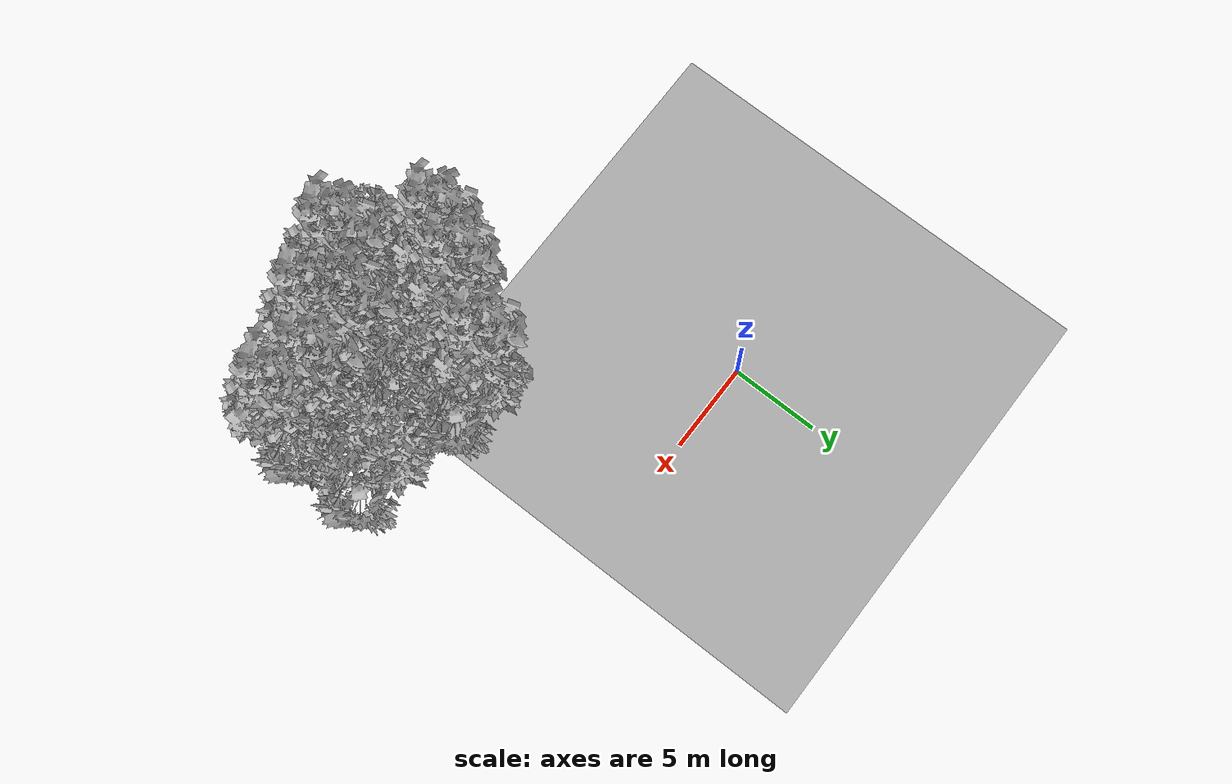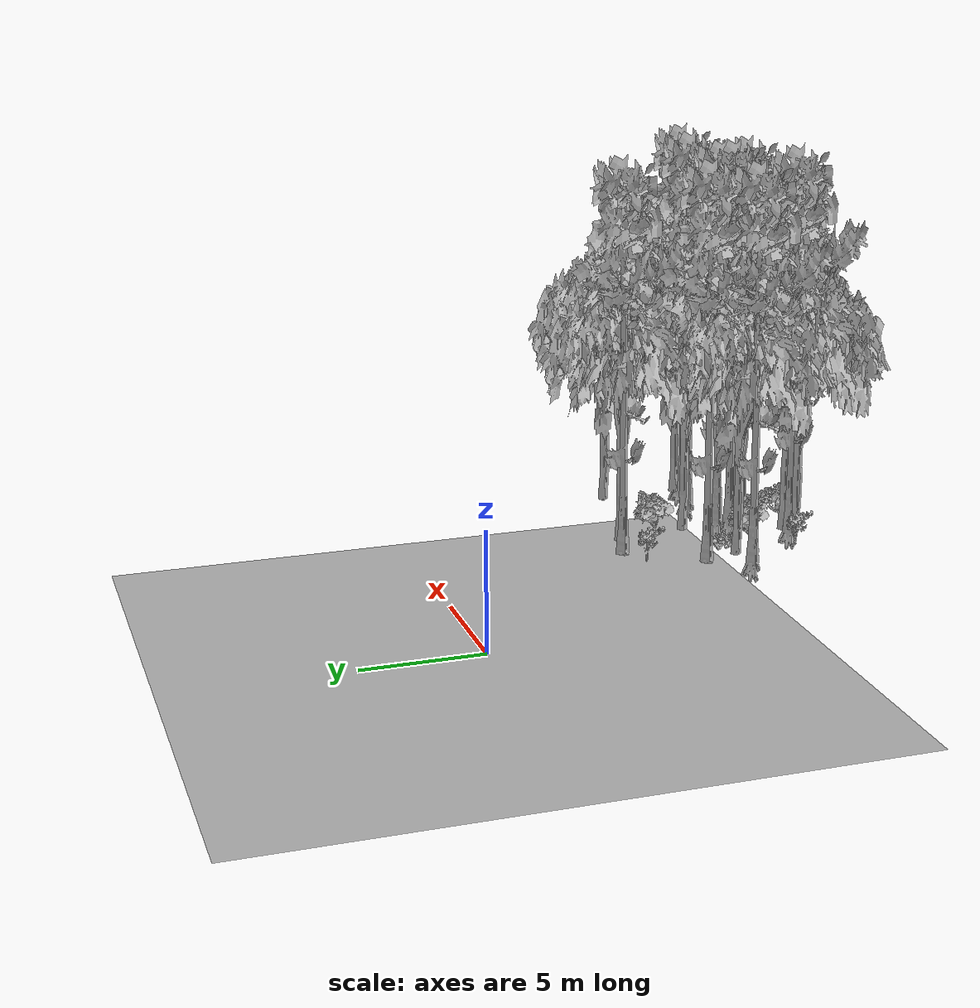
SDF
<sdf version="1.7">
 <world name="default">
  <model name="ground_plane">
   <static>1</static>
   <link name="link">
    <collision name="collision">
     <pose>-50 0 0 0 -0 0</pose>
     <geometry><plane><normal>0 0 1</normal><size>80 80</size></plane></geometry>
     <surface><contact><ode><min_depth>0.01</min_depth><max_vel>0</max_vel></ode></contact></surface>
    </collision>
    <visual name="grass">
     <cast_shadows>0</cast_shadows>
     <geometry>
      <mesh>
       <scale>0.46714285714285714 0.46714285714285714 0.1</scale>
       <uri>file://grass_plane/meshes/grass_plane.dae</uri>
      </mesh>
     </geometry>
    </visual>
   </link>
  </model>
  <model name="Tree 12">
   <static>1</static>
   <pose>8.891146206404827 -16.811591031683307 0 1.57079 -0 0</pose>
   <link name="link">
    <collision name="collision">
     <geometry><mesh><scale>3.5 5 3.5</scale><uri>model://tree_9/meshes/tree_9.obj</uri></mesh></geometry>
    </collision>
    <visual name="visual">
     <geometry><mesh><scale>3.5 5 3.5</scale><uri>model://tree_9/meshes/tree_9.obj</uri></mesh></geometry>
    </visual>
   </link>
  </model>
  <model name="Tree 135">
   <static>1</static>
   <pose>10.085850561370911 -9.266197592580827 0 1.57079 -0 0</pose>
   <link name="link">
    <collision name="collision">
     <geometry><mesh><scale>3.5 5 3.5</scale><uri>model://tree_2/meshes/tree_2.obj</uri></mesh></geometry>
    </collision>
    <visual name="visual">
     <geometry><mesh><scale>3.5 5 3.5</scale><uri>model://tree_2/meshes/tree_2.obj</uri></mesh></geometry>
    </visual>
   </link>
  </model>
  <model name="Tree 190">
   <static>1</static>
   <pose>10.386490776086376 -14.957762613409624 0 1.57079 -0 0</pose>
   <link name="link">
    <collision name="collision">
     <geometry><mesh><scale>3.5 5 3.5</scale><uri>model://tree_2/meshes/tree_2.obj</uri></mesh></geometry>
    </collision>
    <visual name="visual">
     <geometry><mesh><scale>3.5 5 3.5</scale><uri>model://tree_2/meshes/tree_2.obj</uri></mesh></geometry>
    </visual>
   </link>
  </model>
  <model name="Tree 243">
   <static>1</static>
   <pose>8.688797294126381 -17.043939439886337 0 1.57079 -0 0</pose>
   <link name="link">
    <collision name="collision">
     <geometry><mesh><scale>3.5 5 3.5</scale><uri>model://tree_2/meshes/tree_2.obj</uri></mesh></geometry>
    </collision>
    <visual name="visual">
     <geometry><mesh><scale>3.5 5 3.5</scale><uri>model://tree_2/meshes/tree_2.obj</uri></mesh></geometry>
    </visual>
   </link>
  </model>
  <model name="Tree 289">
   <static>1</static>
   <pose>10.938327411676156 -14.803866369962833 0 1.57079 -0 0</pose>
   <link name="link">
    <collision name="collision">
     <geometry><mesh><scale>3.5 5 3.5</scale><uri>model://tree_9/meshes/tree_9.obj</uri></mesh></geometry>
    </collision>
    <visual name="visual">
     <geometry><mesh><scale>3.5 5 3.5</scale><uri>model://tree_9/meshes/tree_9.obj</uri></mesh></geometry>
    </visual>
   </link>
  </model>
  <model name="Tree 319">
   <static>1</static>
   <pose>6.575035393868198 -11.85966388353534 0 1.57079 -0 0</pose>
   <link name="link">
    <collision name="collision">
     <geometry><mesh><scale>3.5 5 3.5</scale><uri>model://tree_9/meshes/tree_9.obj</uri></mesh></geometry>
    </collision>
    <visual name="visual">
     <geometry><mesh><scale>3.5 5 3.5</scale><uri>model://tree_9/meshes/tree_9.obj</uri></mesh></geometry>
    </visual>
   </link>
  </model>
  <model name="Tree 415">
   <static>1</static>
   <pose>13.764887231314162 -13.921614417992004 0 1.57079 -0 0</pose>
   <link name="link">
    <collision name="collision">
     <geometry><mesh><scale>3.5 5 3.5</scale><uri>model://tree_9/meshes/tree_9.obj</uri></mesh></geometry>
    </collision>
    <visual name="visual">
     <geometry><mesh><scale>3.5 5 3.5</scale><uri>model://tree_9/meshes/tree_9.obj</uri></mesh></geometry>
    </visual>
   </link>
  </model>
  <model name="Tree 451">
   <static>1</static>
   <pose>10.554146371197298 -12.422893725343727 0 1.57079 -0 0</pose>
   <link name="link">
    <collision name="collision">
     <geometry><mesh><scale>3.5 5 3.5</scale><uri>model://tree_2/meshes/tree_2.obj</uri></mesh></geometry>
    </collision>
    <visual name="visual">
     <geometry><mesh><scale>3.5 5 3.5</scale><uri>model://tree_2/meshes/tree_2.obj</uri></mesh></geometry>
    </visual>
   </link>
  </model>
  <model name="Tree 458">
   <static>1</static>
   <pose>15.606956791026704 -14.05736472828865 0 1.57079 -0 0</pose>
   <link name="link">
    <collision name="collision">
     <geometry><mesh><scale>3.5 5 3.5</scale><uri>model://tree_2/meshes/tree_2.obj</uri></mesh></geometry>
    </collision>
    <visual name="visual">
     <geometry><mesh><scale>3.5 5 3.5</scale><uri>model://tree_2/meshes/tree_2.obj</uri></mesh></geometry>
    </visual>
   </link>
  </model>
  <model name="Tree 474">
   <static>1</static>
   <pose>8.574265911382327 -8.767977188562355 0 1.57079 -0 0</pose>
   <link name="link">
    <collision name="collision">
     <geometry><mesh><scale>3.5 5 3.5</scale><uri>model://tree_9/meshes/tree_9.obj</uri></mesh></geometry>
    </collision>
    <visual name="visual">
     <geometry><mesh><scale>3.5 5 3.5</scale><uri>model://tree_9/meshes/tree_9.obj</uri></mesh></geometry>
    </visual>
   </link>
  </model>
  <model name="Tree 508">
   <static>1</static>
   <pose>15.832888114091418 -14.34195221724756 0 1.57079 -0 0</pose>
   <link name="link">
    <collision name="collision">
     <geometry><mesh><scale>3.5 5 3.5</scale><uri>model://tree_9/meshes/tree_9.obj</uri></mesh></geometry>
    </collision>
    <visual name="visual">
     <geometry><mesh><scale>3.5 5 3.5</scale><uri>model://tree_9/meshes/tree_9.obj</uri></mesh></geometry>
    </visual>
   </link>
  </model>
  <model name="Tree 529">
   <static>1</static>
   <pose>9.239278387406088 -16.717188189957987 0 1.57079 -0 0</pose>
   <link name="link">
    <collision name="collision">
     <geometry><mesh><scale>3.5 5 3.5</scale><uri>model://tree_2/meshes/tree_2.obj</uri></mesh></geometry>
    </collision>
    <visual name="visual">
     <geometry><mesh><scale>3.5 5 3.5</scale><uri>model://tree_2/meshes/tree_2.obj</uri></mesh></geometry>
    </visual>
   </link>
  </model>
  <model name="Tree 543">
   <static>1</static>
   <pose>6.93378371309403 -13.443700721371563 0 1.57079 -0 0</pose>
   <link name="link">
    <collision name="collision">
     <geometry><mesh><scale>3.5 5 3.5</scale><uri>model://tree_2/meshes/tree_2.obj</uri></mesh></geometry>
    </collision>
    <visual name="visual">
     <geometry><mesh><scale>3.5 5 3.5</scale><uri>model://tree_2/meshes/tree_2.obj</uri></mesh></geometry>
    </visual>
   </link>
  </model>
  <model name="Tree 560">
   <static>1</static>
   <pose>11.076110506592151 -14.238367349843728 0 1.57079 -0 0</pose>
   <link name="link">
    <collision name="collision">
     <geometry><mesh><scale>3.5 5 3.5</scale><uri>model://tree_9/meshes/tree_9.obj</uri></mesh></geometry>
    </collision>
    <visual name="visual">
     <geometry><mesh><scale>3.5 5 3.5</scale><uri>model://tree_9/meshes/tree_9.obj</uri></mesh></geometry>
    </visual>
   </link>
  </model>
  <model name="Tree 573">
   <static>1</static>
   <pose>5.651045768464577 -13.571291500007518 0 1.57079 -0 0</pose>
   <link name="link">
    <collision name="collision">
     <geometry><mesh><scale>3.5 5 3.5</scale><uri>model://tree_9/meshes/tree_9.obj</uri></mesh></geometry>
    </collision>
    <visual name="visual">
     <geometry><mesh><scale>3.5 5 3.5</scale><uri>model://tree_9/meshes/tree_9.obj</uri></mesh></geometry>
    </visual>
   </link>
  </model>
  <model name="Tree 574">
   <static>1</static>
   <pose>15.538825853328625 -10.493663000749656 0 1.57079 -0 0</pose>
   <link name="link">
    <collision name="collision">
     <geometry><mesh><scale>3.5 5 3.5</scale><uri>model://tree_2/meshes/tree_2.obj</uri></mesh></geometry>
    </collision>
    <visual name="visual">
     <geometry><mesh><scale>3.5 5 3.5</scale><uri>model://tree_2/meshes/tree_2.obj</uri></mesh></geometry>
    </visual>
   </link>
  </model>
  <model name="Tree 613">
   <static>1</static>
   <pose>11.756670724457955 -15.74547284814626 0 1.57079 -0 0</pose>
   <link name="link">
    <collision name="collision">
     <geometry><mesh><scale>3.5 5 3.5</scale><uri>model://tree_9/meshes/tree_9.obj</uri></mesh></geometry>
    </collision>
    <visual name="visual">
     <geometry><mesh><scale>3.5 5 3.5</scale><uri>model://tree_9/meshes/tree_9.obj</uri></mesh></geometry>
    </visual>
   </link>
  </model>
  <model name="Bush 19">
   <static>1</static>
   <pose>7.212376163171697 -16.301529691593714 0 1.57079 -0 0</pose>
   <link name="link">
    <collision name="collision">
     <geometry><mesh><scale>2 2 2</scale><uri>model://bush_5/meshes/bush_5.obj</uri></mesh></geometry>
     <surface><contact><collide_without_contact>false</collide_without_contact></contact></surface>
    </collision>
    <visual name="visual">
     <geometry><mesh><scale>2 2 2</scale><uri>model://bush_5/meshes/bush_5.obj</uri></mesh></geometry>
    </visual>
   </link>
  </model>
  <model name="Bush 157">
   <static>1</static>
   <pose>8.325017425253314 -13.412121898769385 0 1.57079 -0 0</pose>
   <link name="link">
    <collision name="collision">
     <geometry><mesh><scale>2 2 2</scale><uri>model://bush_2/meshes/bush_2.obj</uri></mesh></geometry>
     <surface><contact><collide_without_contact>false</collide_without_contact></contact></surface>
    </collision>
    <visual name="visual">
     <geometry><mesh><scale>2 2 2</scale><uri>model://bush_2/meshes/bush_2.obj</uri></mesh></geometry>
    </visual>
   </link>
  </model>
  <model name="Bush 203">
   <static>1</static>
   <pose>11.455429401359225 -17.42309010397884 0 1.57079 -0 0</pose>
   <link name="link">
    <collision name="collision">
     <geometry><mesh><scale>2 2 2</scale><uri>model://bush_4/meshes/bush_4.obj</uri></mesh></geometry>
     <surface><contact><collide_without_contact>false</collide_without_contact></contact></surface>
    </collision>
    <visual name="visual">
     <geometry><mesh><scale>2 2 2</scale><uri>model://bush_4/meshes/bush_4.obj</uri></mesh></geometry>
    </visual>
   </link>
  </model>
  <model name="Bush 380">
   <static>1</static>
   <pose>10.944399912819868 -11.214795913851496 0 1.57079 -0 0</pose>
   <link name="link">
    <collision name="collision">
     <geometry><mesh><scale>2 2 2</scale><uri>model://bush_1/meshes/bush_1.obj</uri></mesh></geometry>
     <surface><contact><collide_without_contact>false</collide_without_contact></contact></surface>
    </collision>
    <visual name="visual">
     <geometry><mesh><scale>2 2 2</scale><uri>model://bush_1/meshes/bush_1.obj</uri></mesh></geometry>
    </visual>
   </link>
  </model>
  <model name="Bush 438">
   <static>1</static>
   <pose>8.923013710243957 -14.90240326884658 0 1.57079 -0 0</pose>
   <link name="link">
    <collision name="collision">
     <geometry><mesh><scale>2 2 2</scale><uri>model://bush_1/meshes/bush_1.obj</uri></mesh></geometry>
     <surface><contact><collide_without_contact>false</collide_without_contact></contact></surface>
    </collision>
    <visual name="visual">
     <geometry><mesh><scale>2 2 2</scale><uri>model://bush_1/meshes/bush_1.obj</uri></mesh></geometry>
    </visual>
   </link>
  </model>
  <model name="Bush 574">
   <static>1</static>
   <pose>10.779593295425506 -16.241252027557323 0 1.57079 -0 0</pose>
   <link name="link">
    <collision name="collision">
     <geometry><mesh><scale>2 2 2</scale><uri>model://bush_4/meshes/bush_4.obj</uri></mesh></geometry>
     <surface><contact><collide_without_contact>false</collide_without_contact></contact></surface>
    </collision>
    <visual name="visual">
     <geometry><mesh><scale>2 2 2</scale><uri>model://bush_4/meshes/bush_4.obj</uri></mesh></geometry>
    </visual>
   </link>
  </model>
  <model name="Bush 620">
   <static>1</static>
   <pose>7.322024819776203 -9.383665740135541 0 1.57079 -0 0</pose>
   <link name="link">
    <collision name="collision">
     <geometry><mesh><scale>2 2 2</scale><uri>model://bush_5/meshes/bush_5.obj</uri></mesh></geometry>
     <surface><contact><collide_without_contact>false</collide_without_contact></contact></surface>
    </collision>
    <visual name="visual">
     <geometry><mesh><scale>2 2 2</scale><uri>model://bush_5/meshes/bush_5.obj</uri></mesh></geometry>
    </visual>
   </link>
  </model>
 </world>
</sdf>
